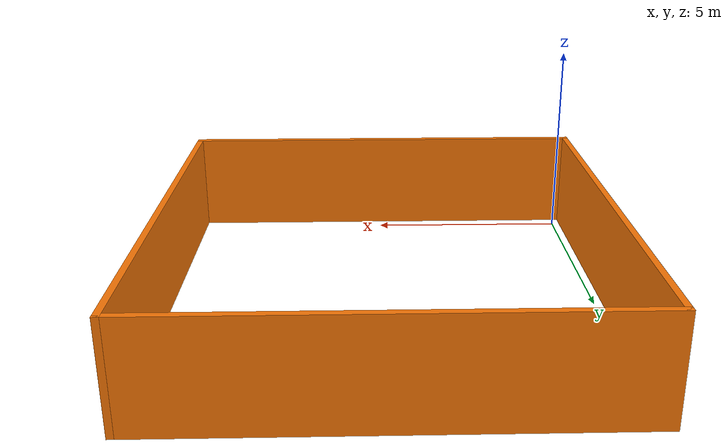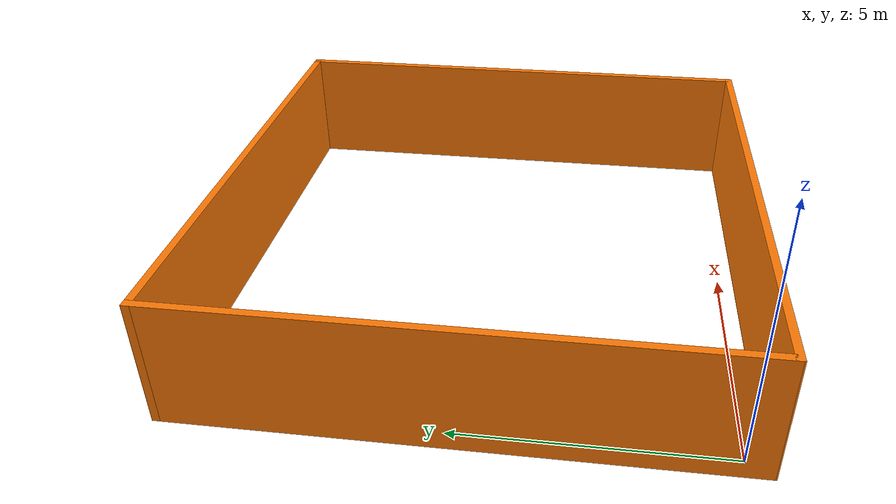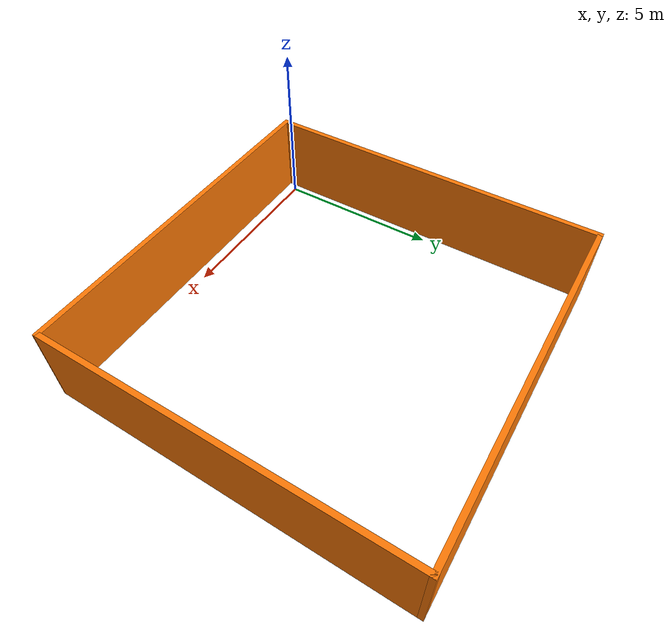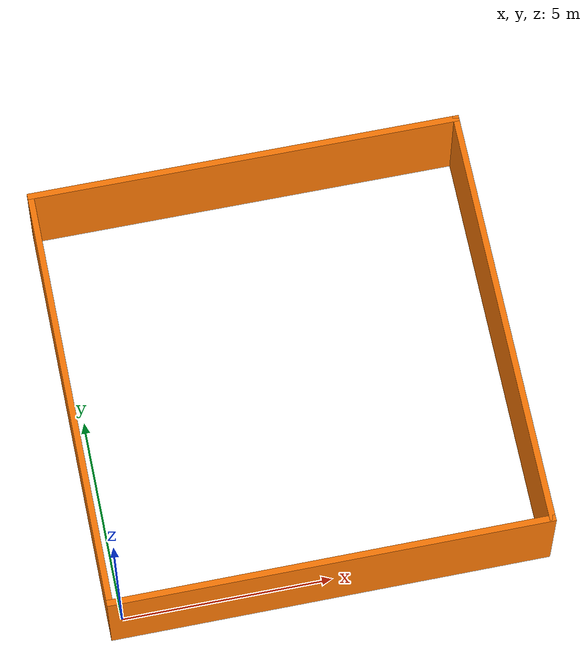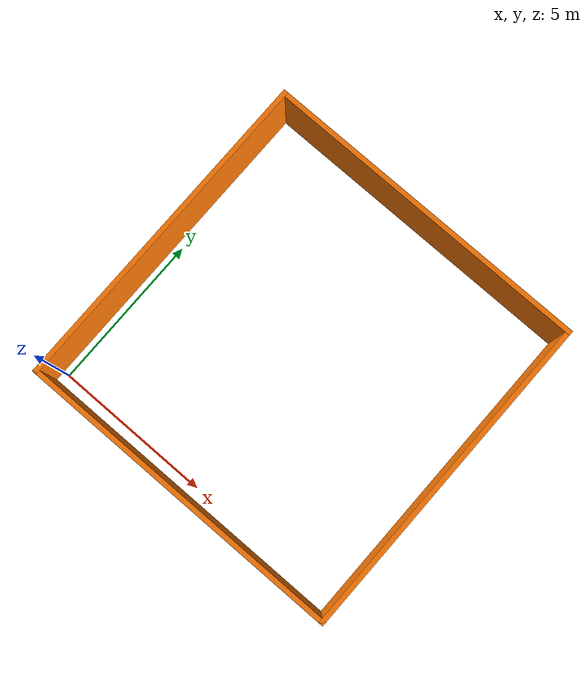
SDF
<?xml version='1.0'?>
<sdf version='1.7'>
  <model name='Glocal_model'>
    <pose>4.90615 4.79561 0 0 -0 0</pose>
    <link name='Wall_0'>
      <collision name='Wall_0_Collision'>
        <geometry>
          <box>
            <size>10.5 0.15 2.5</size>
          </box>
        </geometry>
        <pose>0 0 1.25 0 -0 0</pose>
      </collision>
      <visual name='Wall_0_Visual'>
        <pose>0 0 1.25 0 -0 0</pose>
        <geometry>
          <box>
            <size>10.5 0.15 2.5</size>
          </box>
        </geometry>
        <material>
          <script>
            <uri>file://media/materials/scripts/gazebo.material</uri>
            <name>Gazebo/Grey</name>
          </script>
          <ambient>0.996078 0.47451 0.0196078 1</ambient>
        </material>
        <meta>
          <layer>0</layer>
        </meta>
      </visual>
      <pose>-0 -5.18815 0 0 -0 0</pose>
    </link>
    <link name='Wall_2'>
      <collision name='Wall_2_Collision'>
        <geometry>
          <box>
            <size>10.5 0.15 2.5</size>
          </box>
        </geometry>
        <pose>0 0 1.25 0 -0 0</pose>
      </collision>
      <visual name='Wall_2_Visual'>
        <pose>0 0 1.25 0 -0 0</pose>
        <geometry>
          <box>
            <size>10.5 0.15 2.5</size>
          </box>
        </geometry>
        <material>
          <script>
            <uri>file://media/materials/scripts/gazebo.material</uri>
            <name>Gazebo/Grey</name>
          </script>
          <ambient>0.996078 0.47451 0.0196078 1</ambient>
        </material>
        <meta>
          <layer>0</layer>
        </meta>
      </visual>
      <pose>-0 5.18815 0 0 -0 3.14159</pose>
    </link>
    <link name='Wall_3'>
      <collision name='Wall_3_Collision'>
        <geometry>
          <box>
            <size>10.5 0.15 2.5</size>
          </box>
        </geometry>
        <pose>0 0 1.25 0 -0 0</pose>
      </collision>
      <visual name='Wall_3_Visual'>
        <pose>0 0 1.25 0 -0 0</pose>
        <geometry>
          <box>
            <size>10.5 0.15 2.5</size>
          </box>
        </geometry>
        <material>
          <script>
            <uri>file://media/materials/scripts/gazebo.material</uri>
            <name>Gazebo/Grey</name>
          </script>
          <ambient>0.996078 0.47451 0.0196078 1</ambient>
        </material>
        <meta>
          <layer>0</layer>
        </meta>
      </visual>
      <pose>-5.175 0.01315 0 0 -0 -1.5708</pose>
    </link>
    <link name='Wall_5'>
      <collision name='Wall_5_Collision'>
        <geometry>
          <box>
            <size>10.5 0.15 2.5</size>
          </box>
        </geometry>
        <pose>0 0 1.25 0 -0 0</pose>
      </collision>
      <visual name='Wall_5_Visual'>
        <pose>0 0 1.25 0 -0 0</pose>
        <geometry>
          <box>
            <size>10.5 0.15 2.5</size>
          </box>
        </geometry>
        <material>
          <script>
            <uri>file://media/materials/scripts/gazebo.material</uri>
            <name>Gazebo/Grey</name>
          </script>
          <ambient>0.996078 0.47451 0.0196078 1</ambient>
        </material>
        <meta>
          <layer>0</layer>
        </meta>
      </visual>
      <pose>5.175 0.01315 0 0 -0 1.5708</pose>
    </link>
    <static>1</static>
  </model>
</sdf>
